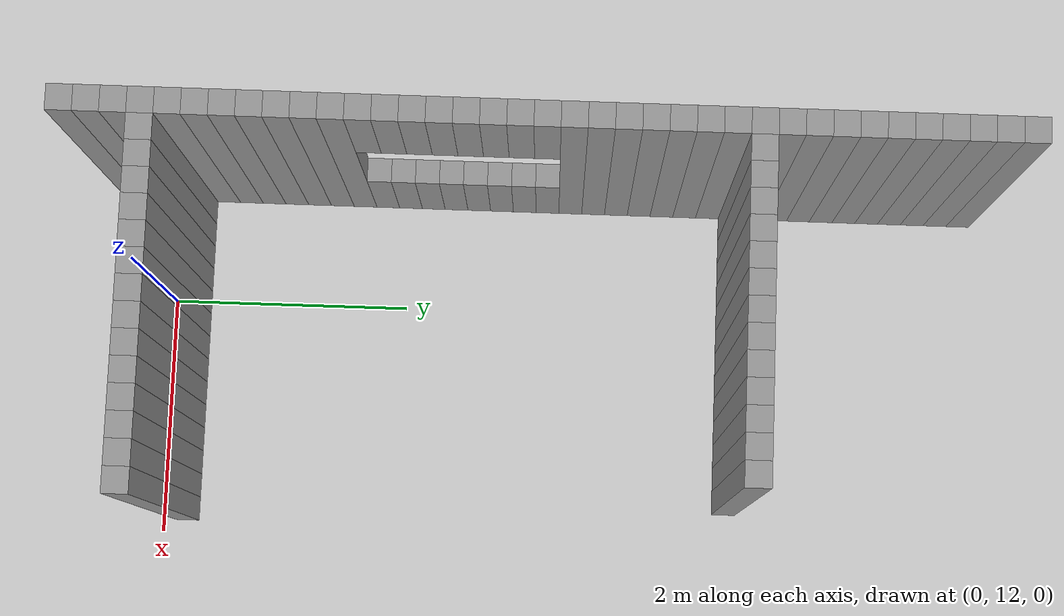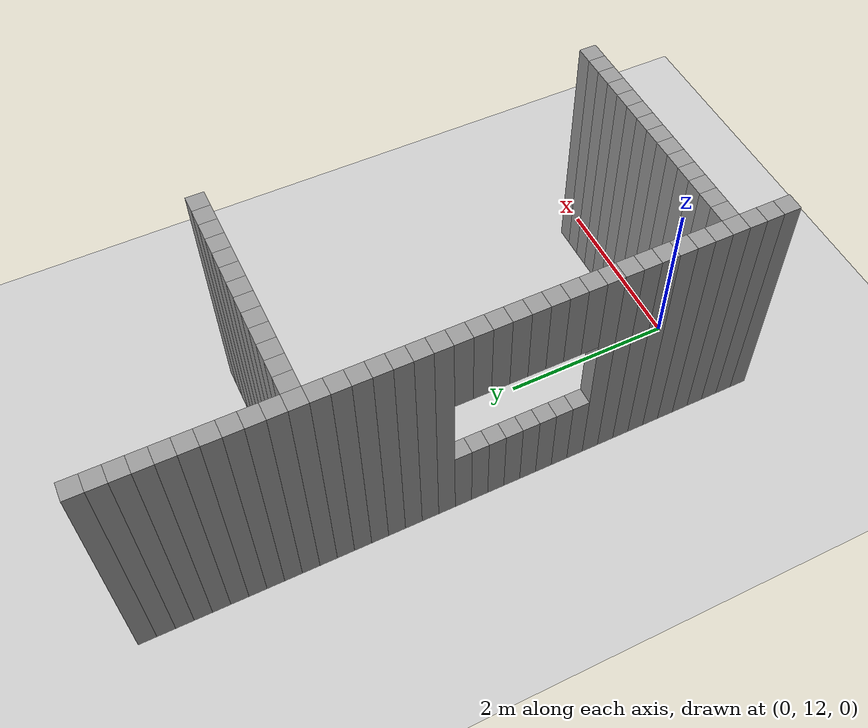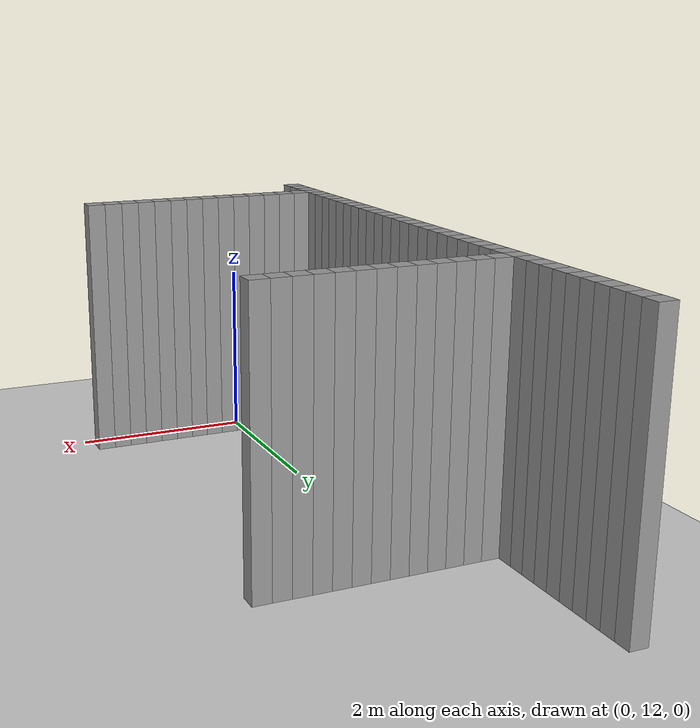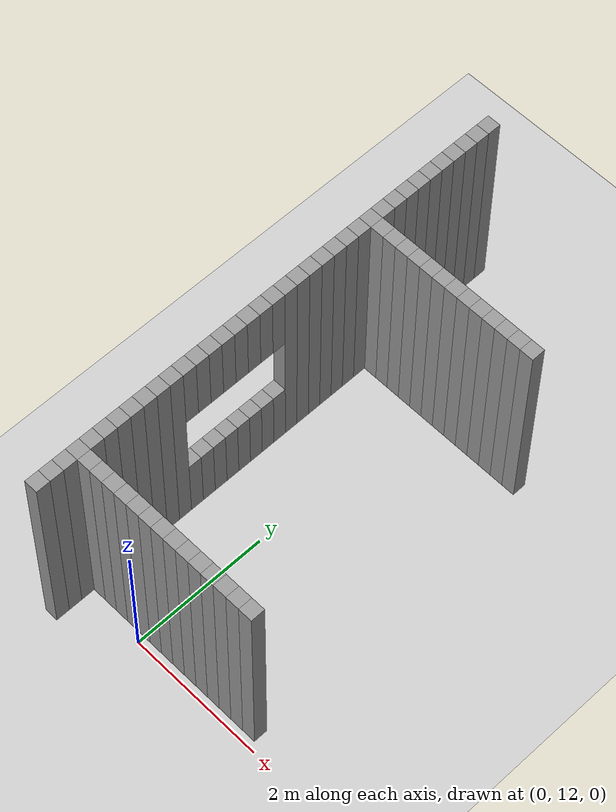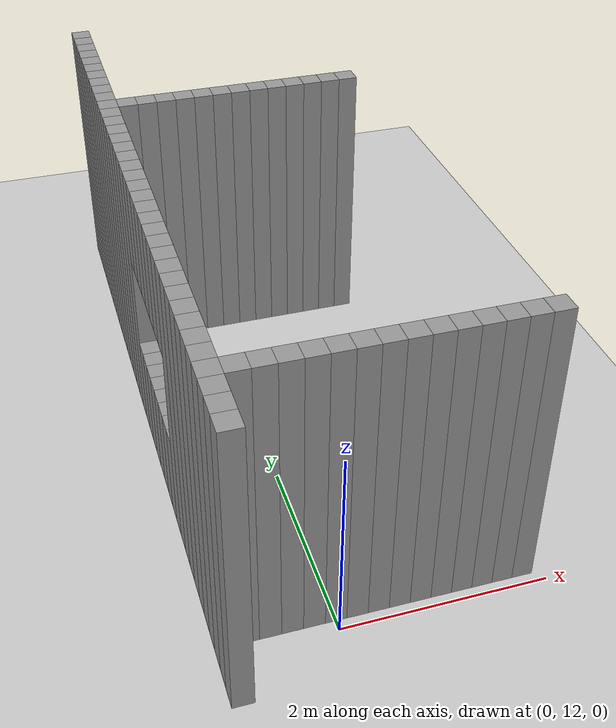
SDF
<sdf version="1.7">
 <world name="default">
  <model name="ground_plane">
   <static>1</static>
   <link name="link">
    <collision name="collision">
     <geometry><plane><normal>0 0 1</normal><size>100 100</size></plane></geometry>
     <surface>
      <contact><collide_bitmask>65535</collide_bitmask></contact>
      <friction><ode><mu>100</mu><mu2>50</mu2></ode></friction>
     </surface>
    </collision>
    <visual name="visual">
     <cast_shadows>0</cast_shadows>
     <geometry><plane><normal>0 0 1</normal><size>100 100</size></plane></geometry>
     <material>
      <script><uri>file://media/materials/scripts/gazebo.material</uri><name>Gazebo/Grey</name></script>
     </material>
    </visual>
   </link>
  </model>
  <model name="05222">
   <pose>-1 -1 0 0 -0 0</pose>
   <link name="Wall_580">
    <collision name="Wall_580_Collision">
     <geometry><box><size>0.2 0.2 3</size></box></geometry>
     <pose>0 0 1.5 0 -0 0</pose>
    </collision>
    <visual name="Wall_580_Visual">
     <pose>0 0 1.5 0 -0 0</pose>
     <geometry><box><size>0.2 0.2 3</size></box></geometry>
     <material>
      <script><uri>file://media/materials/scripts/gazebo.material</uri><name>Gazebo/Grey</name></script>
      <ambient>1 1 1 1</ambient>
     </material>
     <meta><layer>0</layer></meta>
    </visual>
    <pose>0.0 12.600000000000001 0 0 -0 0</pose>
   </link>
   <link name="Wall_585">
    <collision name="Wall_585_Collision">
     <geometry><box><size>0.2 0.2 3</size></box></geometry>
     <pose>0 0 1.5 0 -0 0</pose>
    </collision>
    <visual name="Wall_585_Visual">
     <pose>0 0 1.5 0 -0 0</pose>
     <geometry><box><size>0.2 0.2 3</size></box></geometry>
     <material>
      <script><uri>file://media/materials/scripts/gazebo.material</uri><name>Gazebo/Grey</name></script>
      <ambient>1 1 1 1</ambient>
     </material>
     <meta><layer>0</layer></meta>
    </visual>
    <pose>0.0 12.8 0 0 -0 0</pose>
   </link>
   <link name="Wall_591">
    <collision name="Wall_591_Collision">
     <geometry><box><size>0.2 0.2 3</size></box></geometry>
     <pose>0 0 1.5 0 -0 0</pose>
    </collision>
    <visual name="Wall_591_Visual">
     <pose>0 0 1.5 0 -0 0</pose>
     <geometry><box><size>0.2 0.2 3</size></box></geometry>
     <material>
      <script><uri>file://media/materials/scripts/gazebo.material</uri><name>Gazebo/Grey</name></script>
      <ambient>1 1 1 1</ambient>
     </material>
     <meta><layer>0</layer></meta>
    </visual>
    <pose>0.0 13.0 0 0 -0 0</pose>
   </link>
   <link name="Wall_634">
    <collision name="Wall_634_Collision">
     <geometry><box><size>0.2 0.2 3</size></box></geometry>
     <pose>0 0 1.5 0 -0 0</pose>
    </collision>
    <visual name="Wall_634_Visual">
     <pose>0 0 1.5 0 -0 0</pose>
     <geometry><box><size>0.2 0.2 3</size></box></geometry>
     <material>
      <script><uri>file://media/materials/scripts/gazebo.material</uri><name>Gazebo/Grey</name></script>
      <ambient>1 1 1 1</ambient>
     </material>
     <meta><layer>0</layer></meta>
    </visual>
    <pose>0.0 13.200000000000001 0 0 -0 0</pose>
   </link>
   <link name="Wall_635">
    <collision name="Wall_635_Collision">
     <geometry><box><size>0.2 0.2 3</size></box></geometry>
     <pose>0 0 1.5 0 -0 0</pose>
    </collision>
    <visual name="Wall_635_Visual">
     <pose>0 0 1.5 0 -0 0</pose>
     <geometry><box><size>0.2 0.2 3</size></box></geometry>
     <material>
      <script><uri>file://media/materials/scripts/gazebo.material</uri><name>Gazebo/Grey</name></script>
      <ambient>1 1 1 1</ambient>
     </material>
     <meta><layer>0</layer></meta>
    </visual>
    <pose>0.2 13.200000000000001 0 0 -0 0</pose>
   </link>
   <link name="Wall_636">
    <collision name="Wall_636_Collision">
     <geometry><box><size>0.2 0.2 3</size></box></geometry>
     <pose>0 0 1.5 0 -0 0</pose>
    </collision>
    <visual name="Wall_636_Visual">
     <pose>0 0 1.5 0 -0 0</pose>
     <geometry><box><size>0.2 0.2 3</size></box></geometry>
     <material>
      <script><uri>file://media/materials/scripts/gazebo.material</uri><name>Gazebo/Grey</name></script>
      <ambient>1 1 1 1</ambient>
     </material>
     <meta><layer>0</layer></meta>
    </visual>
    <pose>0.4 13.200000000000001 0 0 -0 0</pose>
   </link>
   <link name="Wall_637">
    <collision name="Wall_637_Collision">
     <geometry><box><size>0.2 0.2 3</size></box></geometry>
     <pose>0 0 1.5 0 -0 0</pose>
    </collision>
    <visual name="Wall_637_Visual">
     <pose>0 0 1.5 0 -0 0</pose>
     <geometry><box><size>0.2 0.2 3</size></box></geometry>
     <material>
      <script><uri>file://media/materials/scripts/gazebo.material</uri><name>Gazebo/Grey</name></script>
      <ambient>1 1 1 1</ambient>
     </material>
     <meta><layer>0</layer></meta>
    </visual>
    <pose>0.6000000000000001 13.200000000000001 0 0 -0 0</pose>
   </link>
   <link name="Wall_638">
    <collision name="Wall_638_Collision">
     <geometry><box><size>0.2 0.2 3</size></box></geometry>
     <pose>0 0 1.5 0 -0 0</pose>
    </collision>
    <visual name="Wall_638_Visual">
     <pose>0 0 1.5 0 -0 0</pose>
     <geometry><box><size>0.2 0.2 3</size></box></geometry>
     <material>
      <script><uri>file://media/materials/scripts/gazebo.material</uri><name>Gazebo/Grey</name></script>
      <ambient>1 1 1 1</ambient>
     </material>
     <meta><layer>0</layer></meta>
    </visual>
    <pose>0.8 13.200000000000001 0 0 -0 0</pose>
   </link>
   <link name="Wall_639">
    <collision name="Wall_639_Collision">
     <geometry><box><size>0.2 0.2 3</size></box></geometry>
     <pose>0 0 1.5 0 -0 0</pose>
    </collision>
    <visual name="Wall_639_Visual">
     <pose>0 0 1.5 0 -0 0</pose>
     <geometry><box><size>0.2 0.2 3</size></box></geometry>
     <material>
      <script><uri>file://media/materials/scripts/gazebo.material</uri><name>Gazebo/Grey</name></script>
      <ambient>1 1 1 1</ambient>
     </material>
     <meta><layer>0</layer></meta>
    </visual>
    <pose>1.0 13.200000000000001 0 0 -0 0</pose>
   </link>
   <link name="Wall_640">
    <collision name="Wall_640_Collision">
     <geometry><box><size>0.2 0.2 3</size></box></geometry>
     <pose>0 0 1.5 0 -0 0</pose>
    </collision>
    <visual name="Wall_640_Visual">
     <pose>0 0 1.5 0 -0 0</pose>
     <geometry><box><size>0.2 0.2 3</size></box></geometry>
     <material>
      <script><uri>file://media/materials/scripts/gazebo.material</uri><name>Gazebo/Grey</name></script>
      <ambient>1 1 1 1</ambient>
     </material>
     <meta><layer>0</layer></meta>
    </visual>
    <pose>1.2000000000000002 13.200000000000001 0 0 -0 0</pose>
   </link>
   <link name="Wall_641">
    <collision name="Wall_641_Collision">
     <geometry><box><size>0.2 0.2 3</size></box></geometry>
     <pose>0 0 1.5 0 -0 0</pose>
    </collision>
    <visual name="Wall_641_Visual">
     <pose>0 0 1.5 0 -0 0</pose>
     <geometry><box><size>0.2 0.2 3</size></box></geometry>
     <material>
      <script><uri>file://media/materials/scripts/gazebo.material</uri><name>Gazebo/Grey</name></script>
      <ambient>1 1 1 1</ambient>
     </material>
     <meta><layer>0</layer></meta>
    </visual>
    <pose>1.4000000000000001 13.200000000000001 0 0 -0 0</pose>
   </link>
   <link name="Wall_642">
    <collision name="Wall_642_Collision">
     <geometry><box><size>0.2 0.2 3</size></box></geometry>
     <pose>0 0 1.5 0 -0 0</pose>
    </collision>
    <visual name="Wall_642_Visual">
     <pose>0 0 1.5 0 -0 0</pose>
     <geometry><box><size>0.2 0.2 3</size></box></geometry>
     <material>
      <script><uri>file://media/materials/scripts/gazebo.material</uri><name>Gazebo/Grey</name></script>
      <ambient>1 1 1 1</ambient>
     </material>
     <meta><layer>0</layer></meta>
    </visual>
    <pose>1.6 13.200000000000001 0 0 -0 0</pose>
   </link>
   <link name="Wall_643">
    <collision name="Wall_643_Collision">
     <geometry><box><size>0.2 0.2 3</size></box></geometry>
     <pose>0 0 1.5 0 -0 0</pose>
    </collision>
    <visual name="Wall_643_Visual">
     <pose>0 0 1.5 0 -0 0</pose>
     <geometry><box><size>0.2 0.2 3</size></box></geometry>
     <material>
      <script><uri>file://media/materials/scripts/gazebo.material</uri><name>Gazebo/Grey</name></script>
      <ambient>1 1 1 1</ambient>
     </material>
     <meta><layer>0</layer></meta>
    </visual>
    <pose>1.8 13.200000000000001 0 0 -0 0</pose>
   </link>
   <link name="Wall_644">
    <collision name="Wall_644_Collision">
     <geometry><box><size>0.2 0.2 3</size></box></geometry>
     <pose>0 0 1.5 0 -0 0</pose>
    </collision>
    <visual name="Wall_644_Visual">
     <pose>0 0 1.5 0 -0 0</pose>
     <geometry><box><size>0.2 0.2 3</size></box></geometry>
     <material>
      <script><uri>file://media/materials/scripts/gazebo.material</uri><name>Gazebo/Grey</name></script>
      <ambient>1 1 1 1</ambient>
     </material>
     <meta><layer>0</layer></meta>
    </visual>
    <pose>2.0 13.200000000000001 0 0 -0 0</pose>
   </link>
   <link name="Wall_645">
    <collision name="Wall_645_Collision">
     <geometry><box><size>0.2 0.2 3</size></box></geometry>
     <pose>0 0 1.5 0 -0 0</pose>
    </collision>
    <visual name="Wall_645_Visual">
     <pose>0 0 1.5 0 -0 0</pose>
     <geometry><box><size>0.2 0.2 3</size></box></geometry>
     <material>
      <script><uri>file://media/materials/scripts/gazebo.material</uri><name>Gazebo/Grey</name></script>
      <ambient>1 1 1 1</ambient>
     </material>
     <meta><layer>0</layer></meta>
    </visual>
    <pose>2.2 13.200000000000001 0 0 -0 0</pose>
   </link>
   <link name="Wall_646">
    <collision name="Wall_646_Collision">
     <geometry><box><size>0.2 0.2 3</size></box></geometry>
     <pose>0 0 1.5 0 -0 0</pose>
    </collision>
    <visual name="Wall_646_Visual">
     <pose>0 0 1.5 0 -0 0</pose>
     <geometry><box><size>0.2 0.2 3</size></box></geometry>
     <material>
      <script><uri>file://media/materials/scripts/gazebo.material</uri><name>Gazebo/Grey</name></script>
      <ambient>1 1 1 1</ambient>
     </material>
     <meta><layer>0</layer></meta>
    </visual>
    <pose>2.4000000000000004 13.200000000000001 0 0 -0 0</pose>
   </link>
   <link name="Wall_647">
    <collision name="Wall_647_Collision">
     <geometry><box><size>0.2 0.2 3</size></box></geometry>
     <pose>0 0 1.5 0 -0 0</pose>
    </collision>
    <visual name="Wall_647_Visual">
     <pose>0 0 1.5 0 -0 0</pose>
     <geometry><box><size>0.2 0.2 3</size></box></geometry>
     <material>
      <script><uri>file://media/materials/scripts/gazebo.material</uri><name>Gazebo/Grey</name></script>
      <ambient>1 1 1 1</ambient>
     </material>
     <meta><layer>0</layer></meta>
    </visual>
    <pose>2.6 13.200000000000001 0 0 -0 0</pose>
   </link>
   <link name="Wall_648">
    <collision name="Wall_648_Collision">
     <geometry><box><size>0.2 0.2 3</size></box></geometry>
     <pose>0 0 1.5 0 -0 0</pose>
    </collision>
    <visual name="Wall_648_Visual">
     <pose>0 0 1.5 0 -0 0</pose>
     <geometry><box><size>0.2 0.2 3</size></box></geometry>
     <material>
      <script><uri>file://media/materials/scripts/gazebo.material</uri><name>Gazebo/Grey</name></script>
      <ambient>1 1 1 1</ambient>
     </material>
     <meta><layer>0</layer></meta>
    </visual>
    <pose>2.8000000000000003 13.200000000000001 0 0 -0 0</pose>
   </link>
   <link name="Wall_659">
    <collision name="Wall_659_Collision">
     <geometry><box><size>0.2 0.2 3</size></box></geometry>
     <pose>0 0 1.5 0 -0 0</pose>
    </collision>
    <visual name="Wall_659_Visual">
     <pose>0 0 1.5 0 -0 0</pose>
     <geometry><box><size>0.2 0.2 3</size></box></geometry>
     <material>
      <script><uri>file://media/materials/scripts/gazebo.material</uri><name>Gazebo/Grey</name></script>
      <ambient>1 1 1 1</ambient>
     </material>
     <meta><layer>0</layer></meta>
    </visual>
    <pose>0.0 13.4 0 0 -0 0</pose>
   </link>
   <link name="Wall_667">
    <collision name="Wall_667_Collision">
     <geometry><box><size>0.2 0.2 3</size></box></geometry>
     <pose>0 0 1.5 0 -0 0</pose>
    </collision>
    <visual name="Wall_667_Visual">
     <pose>0 0 1.5 0 -0 0</pose>
     <geometry><box><size>0.2 0.2 3</size></box></geometry>
     <material>
      <script><uri>file://media/materials/scripts/gazebo.material</uri><name>Gazebo/Grey</name></script>
      <ambient>1 1 1 1</ambient>
     </material>
     <meta><layer>0</layer></meta>
    </visual>
    <pose>0.0 13.600000000000001 0 0 -0 0</pose>
   </link>
   <link name="Wall_675">
    <collision name="Wall_675_Collision">
     <geometry><box><size>0.2 0.2 3</size></box></geometry>
     <pose>0 0 1.5 0 -0 0</pose>
    </collision>
    <visual name="Wall_675_Visual">
     <pose>0 0 1.5 0 -0 0</pose>
     <geometry><box><size>0.2 0.2 3</size></box></geometry>
     <material>
      <script><uri>file://media/materials/scripts/gazebo.material</uri><name>Gazebo/Grey</name></script>
      <ambient>1 1 1 1</ambient>
     </material>
     <meta><layer>0</layer></meta>
    </visual>
    <pose>0.0 13.8 0 0 -0 0</pose>
   </link>
   <link name="Wall_682">
    <collision name="Wall_682_Collision">
     <geometry><box><size>0.2 0.2 3</size></box></geometry>
     <pose>0 0 1.5 0 -0 0</pose>
    </collision>
    <visual name="Wall_682_Visual">
     <pose>0 0 1.5 0 -0 0</pose>
     <geometry><box><size>0.2 0.2 3</size></box></geometry>
     <material>
      <script><uri>file://media/materials/scripts/gazebo.material</uri><name>Gazebo/Grey</name></script>
      <ambient>1 1 1 1</ambient>
     </material>
     <meta><layer>0</layer></meta>
    </visual>
    <pose>0.0 14.0 0 0 -0 0</pose>
   </link>
   <link name="Wall_689">
    <collision name="Wall_689_Collision">
     <geometry><box><size>0.2 0.2 3</size></box></geometry>
     <pose>0 0 1.5 0 -0 0</pose>
    </collision>
    <visual name="Wall_689_Visual">
     <pose>0 0 1.5 0 -0 0</pose>
     <geometry><box><size>0.2 0.2 3</size></box></geometry>
     <material>
      <script><uri>file://media/materials/scripts/gazebo.material</uri><name>Gazebo/Grey</name></script>
      <ambient>1 1 1 1</ambient>
     </material>
     <meta><layer>0</layer></meta>
    </visual>
    <pose>0.0 14.200000000000001 0 0 -0 0</pose>
   </link>
   <link name="Wall_695">
    <collision name="Wall_695_Collision">
     <geometry><box><size>0.2 0.2 3</size></box></geometry>
     <pose>0 0 1.5 0 -0 0</pose>
    </collision>
    <visual name="Wall_695_Visual">
     <pose>0 0 1.5 0 -0 0</pose>
     <geometry><box><size>0.2 0.2 3</size></box></geometry>
     <material>
      <script><uri>file://media/materials/scripts/gazebo.material</uri><name>Gazebo/Grey</name></script>
      <ambient>1 1 1 1</ambient>
     </material>
     <meta><layer>0</layer></meta>
    </visual>
    <pose>0.0 14.4 0 0 -0 0</pose>
   </link>
   <link name="Wall_701">
    <collision name="Wall_701_Collision">
     <geometry><box><size>0.2 0.2 3</size></box></geometry>
     <pose>0 0 1.5 0 -0 0</pose>
    </collision>
    <visual name="Wall_701_Visual">
     <pose>0 0 1.5 0 -0 0</pose>
     <geometry><box><size>0.2 0.2 3</size></box></geometry>
     <material>
      <script><uri>file://media/materials/scripts/gazebo.material</uri><name>Gazebo/Grey</name></script>
      <ambient>1 1 1 1</ambient>
     </material>
     <meta><layer>0</layer></meta>
    </visual>
    <pose>0.0 14.600000000000001 0 0 -0 0</pose>
   </link>
   <link name="Wall_707">
    <collision name="Wall_707_Collision">
     <geometry><box><size>0.2 0.2 1.0</size></box></geometry>
     <pose>0 0 0.5 0 -0 0</pose>
    </collision>
    <visual name="Wall_707_Visual">
     <pose>0 0 0.5 0 -0 0</pose>
     <geometry><box><size>0.2 0.2 1.0</size></box></geometry>
     <material>
      <script><uri>file://media/materials/scripts/gazebo.material</uri><name>Gazebo/Grey</name></script>
      <ambient>1 1 1 1</ambient>
     </material>
     <meta><layer>0</layer></meta>
    </visual>
    <pose>0.0 14.8 0 0 -0 0</pose>
   </link>
   <link name="Wall_708">
    <collision name="Wall_708_Collision">
     <geometry><box><size>0.2 0.2 1.0</size></box></geometry>
     <pose>0 0 2.5 0 -0 0</pose>
    </collision>
    <visual name="Wall_708_Visual">
     <pose>0 0 2.5 0 -0 0</pose>
     <geometry><box><size>0.2 0.2 1.0</size></box></geometry>
     <material>
      <script><uri>file://media/materials/scripts/gazebo.material</uri><name>Gazebo/Grey</name></script>
      <ambient>1 1 1 1</ambient>
     </material>
     <meta><layer>0</layer></meta>
    </visual>
    <pose>0.0 14.8 0 0 -0 0</pose>
   </link>
   <link name="Window_707">
    <collision name="Window_707_Collision">
     <geometry><box><size>0.2 0.2 1.0</size></box></geometry>
     <pose>0 0 1.5 0 -0 0</pose>
    </collision>
    <visual name="Wall_708_Visual">
     <pose>0 0 2.5 0 -0 0</pose>
     <geometry><box><size>0.2 0.2 1.0</size></box></geometry>
     <material>
      <script><uri>file://media/materials/scripts/gazebo.material</uri><name>Gazebo/Grey</name></script>
      <ambient>1 1 1 1</ambient>
     </material>
     <meta><layer>0</layer></meta>
    </visual>
    <pose>0.0 14.8 0 0 -0 0</pose>
   </link>
   <link name="Wall_713">
    <collision name="Wall_713_Collision">
     <geometry><box><size>0.2 0.2 1.0</size></box></geometry>
     <pose>0 0 0.5 0 -0 0</pose>
    </collision>
    <visual name="Wall_713_Visual">
     <pose>0 0 0.5 0 -0 0</pose>
     <geometry><box><size>0.2 0.2 1.0</size></box></geometry>
     <material>
      <script><uri>file://media/materials/scripts/gazebo.material</uri><name>Gazebo/Grey</name></script>
      <ambient>1 1 1 1</ambient>
     </material>
     <meta><layer>0</layer></meta>
    </visual>
    <pose>0.0 15.0 0 0 -0 0</pose>
   </link>
   <link name="Wall_714">
    <collision name="Wall_714_Collision">
     <geometry><box><size>0.2 0.2 1.0</size></box></geometry>
     <pose>0 0 2.5 0 -0 0</pose>
    </collision>
    <visual name="Wall_714_Visual">
     <pose>0 0 2.5 0 -0 0</pose>
     <geometry><box><size>0.2 0.2 1.0</size></box></geometry>
     <material>
      <script><uri>file://media/materials/scripts/gazebo.material</uri><name>Gazebo/Grey</name></script>
      <ambient>1 1 1 1</ambient>
     </material>
     <meta><layer>0</layer></meta>
    </visual>
    <pose>0.0 15.0 0 0 -0 0</pose>
   </link>
   <link name="Window_713">
    <collision name="Window_713_Collision">
     <geometry><box><size>0.2 0.2 1.0</size></box></geometry>
     <pose>0 0 1.5 0 -0 0</pose>
    </collision>
    <visual name="Wall_714_Visual">
     <pose>0 0 2.5 0 -0 0</pose>
     <geometry><box><size>0.2 0.2 1.0</size></box></geometry>
     <material>
      <script><uri>file://media/materials/scripts/gazebo.material</uri><name>Gazebo/Grey</name></script>
      <ambient>1 1 1 1</ambient>
     </material>
     <meta><layer>0</layer></meta>
    </visual>
    <pose>0.0 15.0 0 0 -0 0</pose>
   </link>
   <link name="Wall_719">
    <collision name="Wall_719_Collision">
     <geometry><box><size>0.2 0.2 1.0</size></box></geometry>
     <pose>0 0 0.5 0 -0 0</pose>
    </collision>
    <visual name="Wall_719_Visual">
     <pose>0 0 0.5 0 -0 0</pose>
     <geometry><box><size>0.2 0.2 1.0</size></box></geometry>
     <material>
      <script><uri>file://media/materials/scripts/gazebo.material</uri><name>Gazebo/Grey</name></script>
      <ambient>1 1 1 1</ambient>
     </material>
     <meta><layer>0</layer></meta>
    </visual>
    <pose>0.0 15.200000000000001 0 0 -0 0</pose>
   </link>
   <link name="Wall_720">
    <collision name="Wall_720_Collision">
     <geometry><box><size>0.2 0.2 1.0</size></box></geometry>
     <pose>0 0 2.5 0 -0 0</pose>
    </collision>
    <visual name="Wall_720_Visual">
     <pose>0 0 2.5 0 -0 0</pose>
     <geometry><box><size>0.2 0.2 1.0</size></box></geometry>
     <material>
      <script><uri>file://media/materials/scripts/gazebo.material</uri><name>Gazebo/Grey</name></script>
      <ambient>1 1 1 1</ambient>
     </material>
     <meta><layer>0</layer></meta>
    </visual>
    <pose>0.0 15.200000000000001 0 0 -0 0</pose>
   </link>
   <link name="Window_719">
    <collision name="Window_719_Collision">
     <geometry><box><size>0.2 0.2 1.0</size></box></geometry>
     <pose>0 0 1.5 0 -0 0</pose>
    </collision>
    <visual name="Wall_720_Visual">
     <pose>0 0 2.5 0 -0 0</pose>
     <geometry><box><size>0.2 0.2 1.0</size></box></geometry>
     <material>
      <script><uri>file://media/materials/scripts/gazebo.material</uri><name>Gazebo/Grey</name></script>
      <ambient>1 1 1 1</ambient>
     </material>
     <meta><layer>0</layer></meta>
    </visual>
    <pose>0.0 15.200000000000001 0 0 -0 0</pose>
   </link>
   <link name="Wall_724">
    <collision name="Wall_724_Collision">
     <geometry><box><size>0.2 0.2 1.0</size></box></geometry>
     <pose>0 0 0.5 0 -0 0</pose>
    </collision>
    <visual name="Wall_724_Visual">
     <pose>0 0 0.5 0 -0 0</pose>
     <geometry><box><size>0.2 0.2 1.0</size></box></geometry>
     <material>
      <script><uri>file://media/materials/scripts/gazebo.material</uri><name>Gazebo/Grey</name></script>
      <ambient>1 1 1 1</ambient>
     </material>
     <meta><layer>0</layer></meta>
    </visual>
    <pose>0.0 15.4 0 0 -0 0</pose>
   </link>
   <link name="Wall_725">
    <collision name="Wall_725_Collision">
     <geometry><box><size>0.2 0.2 1.0</size></box></geometry>
     <pose>0 0 2.5 0 -0 0</pose>
    </collision>
    <visual name="Wall_725_Visual">
     <pose>0 0 2.5 0 -0 0</pose>
     <geometry><box><size>0.2 0.2 1.0</size></box></geometry>
     <material>
      <script><uri>file://media/materials/scripts/gazebo.material</uri><name>Gazebo/Grey</name></script>
      <ambient>1 1 1 1</ambient>
     </material>
     <meta><layer>0</layer></meta>
    </visual>
    <pose>0.0 15.4 0 0 -0 0</pose>
   </link>
   <link name="Window_724">
    <collision name="Window_724_Collision">
     <geometry><box><size>0.2 0.2 1.0</size></box></geometry>
     <pose>0 0 1.5 0 -0 0</pose>
    </collision>
    <visual name="Wall_725_Visual">
     <pose>0 0 2.5 0 -0 0</pose>
     <geometry><box><size>0.2 0.2 1.0</size></box></geometry>
     <material>
      <script><uri>file://media/materials/scripts/gazebo.material</uri><name>Gazebo/Grey</name></script>
      <ambient>1 1 1 1</ambient>
     </material>
     <meta><layer>0</layer></meta>
    </visual>
    <pose>0.0 15.4 0 0 -0 0</pose>
   </link>
   <link name="Wall_729">
    <collision name="Wall_729_Collision">
     <geometry><box><size>0.2 0.2 1.0</size></box></geometry>
     <pose>0 0 0.5 0 -0 0</pose>
    </collision>
    <visual name="Wall_729_Visual">
     <pose>0 0 0.5 0 -0 0</pose>
     <geometry><box><size>0.2 0.2 1.0</size></box></geometry>
     <material>
      <script><uri>file://media/materials/scripts/gazebo.material</uri><name>Gazebo/Grey</name></script>
      <ambient>1 1 1 1</ambient>
     </material>
     <meta><layer>0</layer></meta>
    </visual>
    <pose>0.0 15.600000000000001 0 0 -0 0</pose>
   </link>
   <link name="Wall_730">
    <collision name="Wall_730_Collision">
     <geometry><box><size>0.2 0.2 1.0</size></box></geometry>
     <pose>0 0 2.5 0 -0 0</pose>
    </collision>
    <visual name="Wall_730_Visual">
     <pose>0 0 2.5 0 -0 0</pose>
     <geometry><box><size>0.2 0.2 1.0</size></box></geometry>
     <material>
      <script><uri>file://media/materials/scripts/gazebo.material</uri><name>Gazebo/Grey</name></script>
      <ambient>1 1 1 1</ambient>
     </material>
     <meta><layer>0</layer></meta>
    </visual>
    <pose>0.0 15.600000000000001 0 0 -0 0</pose>
   </link>
   <link name="Window_729">
    <collision name="Window_729_Collision">
     <geometry><box><size>0.2 0.2 1.0</size></box></geometry>
     <pose>0 0 1.5 0 -0 0</pose>
    </collision>
    <visual name="Wall_730_Visual">
     <pose>0 0 2.5 0 -0 0</pose>
     <geometry><box><size>0.2 0.2 1.0</size></box></geometry>
     <material>
      <script><uri>file://media/materials/scripts/gazebo.material</uri><name>Gazebo/Grey</name></script>
      <ambient>1 1 1 1</ambient>
     </material>
     <meta><layer>0</layer></meta>
    </visual>
    <pose>0.0 15.600000000000001 0 0 -0 0</pose>
   </link>
   <link name="Wall_734">
    <collision name="Wall_734_Collision">
     <geometry><box><size>0.2 0.2 1.0</size></box></geometry>
     <pose>0 0 0.5 0 -0 0</pose>
    </collision>
    <visual name="Wall_734_Visual">
     <pose>0 0 0.5 0 -0 0</pose>
     <geometry><box><size>0.2 0.2 1.0</size></box></geometry>
     <material>
      <script><uri>file://media/materials/scripts/gazebo.material</uri><name>Gazebo/Grey</name></script>
      <ambient>1 1 1 1</ambient>
     </material>
     <meta><layer>0</layer></meta>
    </visual>
    <pose>0.0 15.8 0 0 -0 0</pose>
   </link>
   <link name="Wall_735">
    <collision name="Wall_735_Collision">
     <geometry><box><size>0.2 0.2 1.0</size></box></geometry>
     <pose>0 0 2.5 0 -0 0</pose>
    </collision>
    <visual name="Wall_735_Visual">
     <pose>0 0 2.5 0 -0 0</pose>
     <geometry><box><size>0.2 0.2 1.0</size></box></geometry>
     <material>
      <script><uri>file://media/materials/scripts/gazebo.material</uri><name>Gazebo/Grey</name></script>
      <ambient>1 1 1 1</ambient>
     </material>
     <meta><layer>0</layer></meta>
    </visual>
    <pose>0.0 15.8 0 0 -0 0</pose>
   </link>
   <link name="Window_734">
    <collision name="Window_734_Collision">
     <geometry><box><size>0.2 0.2 1.0</size></box></geometry>
     <pose>0 0 1.5 0 -0 0</pose>
    </collision>
    <visual name="Wall_735_Visual">
     <pose>0 0 2.5 0 -0 0</pose>
     <geometry><box><size>0.2 0.2 1.0</size></box></geometry>
     <material>
      <script><uri>file://media/materials/scripts/gazebo.material</uri><name>Gazebo/Grey</name></script>
      <ambient>1 1 1 1</ambient>
     </material>
     <meta><layer>0</layer></meta>
    </visual>
    <pose>0.0 15.8 0 0 -0 0</pose>
   </link>
   <link name="Wall_758">
    <collision name="Wall_758_Collision">
     <geometry><box><size>0.2 0.2 1.0</size></box></geometry>
     <pose>0 0 0.5 0 -0 0</pose>
    </collision>
    <visual name="Wall_758_Visual">
     <pose>0 0 0.5 0 -0 0</pose>
     <geometry><box><size>0.2 0.2 1.0</size></box></geometry>
     <material>
      <script><uri>file://media/materials/scripts/gazebo.material</uri><name>Gazebo/Grey</name></script>
      <ambient>1 1 1 1</ambient>
     </material>
     <meta><layer>0</layer></meta>
    </visual>
    <pose>0.0 16.0 0 0 -0 0</pose>
   </link>
   <link name="Wall_759">
    <collision name="Wall_759_Collision">
     <geometry><box><size>0.2 0.2 1.0</size></box></geometry>
     <pose>0 0 2.5 0 -0 0</pose>
    </collision>
    <visual name="Wall_759_Visual">
     <pose>0 0 2.5 0 -0 0</pose>
     <geometry><box><size>0.2 0.2 1.0</size></box></geometry>
     <material>
      <script><uri>file://media/materials/scripts/gazebo.material</uri><name>Gazebo/Grey</name></script>
      <ambient>1 1 1 1</ambient>
     </material>
     <meta><layer>0</layer></meta>
    </visual>
    <pose>0.0 16.0 0 0 -0 0</pose>
   </link>
   <link name="Window_758">
    <collision name="Window_758_Collision">
     <geometry><box><size>0.2 0.2 1.0</size></box></geometry>
     <pose>0 0 1.5 0 -0 0</pose>
    </collision>
    <visual name="Wall_759_Visual">
     <pose>0 0 2.5 0 -0 0</pose>
     <geometry><box><size>0.2 0.2 1.0</size></box></geometry>
     <material>
      <script><uri>file://media/materials/scripts/gazebo.material</uri><name>Gazebo/Grey</name></script>
      <ambient>1 1 1 1</ambient>
     </material>
     <meta><layer>0</layer></meta>
    </visual>
    <pose>0.0 16.0 0 0 -0 0</pose>
   </link>
   <link name="Wall_765">
    <collision name="Wall_765_Collision">
     <geometry><box><size>0.2 0.2 1.0</size></box></geometry>
     <pose>0 0 0.5 0 -0 0</pose>
    </collision>
    <visual name="Wall_765_Visual">
     <pose>0 0 0.5 0 -0 0</pose>
     <geometry><box><size>0.2 0.2 1.0</size></box></geometry>
     <material>
      <script><uri>file://media/materials/scripts/gazebo.material</uri><name>Gazebo/Grey</name></script>
      <ambient>1 1 1 1</ambient>
     </material>
     <meta><layer>0</layer></meta>
    </visual>
    <pose>0.0 16.2 0 0 -0 0</pose>
   </link>
   <link name="Wall_766">
    <collision name="Wall_766_Collision">
     <geometry><box><size>0.2 0.2 1.0</size></box></geometry>
     <pose>0 0 2.5 0 -0 0</pose>
    </collision>
    <visual name="Wall_766_Visual">
     <pose>0 0 2.5 0 -0 0</pose>
     <geometry><box><size>0.2 0.2 1.0</size></box></geometry>
     <material>
      <script><uri>file://media/materials/scripts/gazebo.material</uri><name>Gazebo/Grey</name></script>
      <ambient>1 1 1 1</ambient>
     </material>
     <meta><layer>0</layer></meta>
    </visual>
    <pose>0.0 16.2 0 0 -0 0</pose>
   </link>
   <link name="Window_765">
    <collision name="Window_765_Collision">
     <geometry><box><size>0.2 0.2 1.0</size></box></geometry>
     <pose>0 0 1.5 0 -0 0</pose>
    </collision>
    <visual name="Wall_766_Visual">
     <pose>0 0 2.5 0 -0 0</pose>
     <geometry><box><size>0.2 0.2 1.0</size></box></geometry>
     <material>
      <script><uri>file://media/materials/scripts/gazebo.material</uri><name>Gazebo/Grey</name></script>
      <ambient>1 1 1 1</ambient>
     </material>
     <meta><layer>0</layer></meta>
    </visual>
    <pose>0.0 16.2 0 0 -0 0</pose>
   </link>
   <link name="Wall_772">
    <collision name="Wall_772_Collision">
     <geometry><box><size>0.2 0.2 3</size></box></geometry>
     <pose>0 0 1.5 0 -0 0</pose>
    </collision>
    <visual name="Wall_772_Visual">
     <pose>0 0 1.5 0 -0 0</pose>
     <geometry><box><size>0.2 0.2 3</size></box></geometry>
     <material>
      <script><uri>file://media/materials/scripts/gazebo.material</uri><name>Gazebo/Grey</name></script>
      <ambient>1 1 1 1</ambient>
     </material>
     <meta><layer>0</layer></meta>
    </visual>
    <pose>0.0 16.400000000000002 0 0 -0 0</pose>
   </link>
   <link name="Wall_778">
    <collision name="Wall_778_Collision">
     <geometry><box><size>0.2 0.2 3</size></box></geometry>
     <pose>0 0 1.5 0 -0 0</pose>
    </collision>
    <visual name="Wall_778_Visual">
     <pose>0 0 1.5 0 -0 0</pose>
     <geometry><box><size>0.2 0.2 3</size></box></geometry>
     <material>
      <script><uri>file://media/materials/scripts/gazebo.material</uri><name>Gazebo/Grey</name></script>
      <ambient>1 1 1 1</ambient>
     </material>
     <meta><layer>0</layer></meta>
    </visual>
    <pose>0.0 16.6 0 0 -0 0</pose>
   </link>
   <link name="Wall_785">
    <collision name="Wall_785_Collision">
     <geometry><box><size>0.2 0.2 3</size></box></geometry>
     <pose>0 0 1.5 0 -0 0</pose>
    </collision>
    <visual name="Wall_785_Visual">
     <pose>0 0 1.5 0 -0 0</pose>
     <geometry><box><size>0.2 0.2 3</size></box></geometry>
     <material>
      <script><uri>file://media/materials/scripts/gazebo.material</uri><name>Gazebo/Grey</name></script>
      <ambient>1 1 1 1</ambient>
     </material>
     <meta><layer>0</layer></meta>
    </visual>
    <pose>0.0 16.8 0 0 -0 0</pose>
   </link>
   <link name="Wall_792">
    <collision name="Wall_792_Collision">
     <geometry><box><size>0.2 0.2 3</size></box></geometry>
     <pose>0 0 1.5 0 -0 0</pose>
    </collision>
    <visual name="Wall_792_Visual">
     <pose>0 0 1.5 0 -0 0</pose>
     <geometry><box><size>0.2 0.2 3</size></box></geometry>
     <material>
      <script><uri>file://media/materials/scripts/gazebo.material</uri><name>Gazebo/Grey</name></script>
      <ambient>1 1 1 1</ambient>
     </material>
     <meta><layer>0</layer></meta>
    </visual>
    <pose>0.0 17.0 0 0 -0 0</pose>
   </link>
   <link name="Wall_800">
    <collision name="Wall_800_Collision">
     <geometry><box><size>0.2 0.2 3</size></box></geometry>
     <pose>0 0 1.5 0 -0 0</pose>
    </collision>
    <visual name="Wall_800_Visual">
     <pose>0 0 1.5 0 -0 0</pose>
     <geometry><box><size>0.2 0.2 3</size></box></geometry>
     <material>
      <script><uri>file://media/materials/scripts/gazebo.material</uri><name>Gazebo/Grey</name></script>
      <ambient>1 1 1 1</ambient>
     </material>
     <meta><layer>0</layer></meta>
    </visual>
    <pose>0.0 17.2 0 0 -0 0</pose>
   </link>
   <link name="Wall_807">
    <collision name="Wall_807_Collision">
     <geometry><box><size>0.2 0.2 3</size></box></geometry>
     <pose>0 0 1.5 0 -0 0</pose>
    </collision>
    <visual name="Wall_807_Visual">
     <pose>0 0 1.5 0 -0 0</pose>
     <geometry><box><size>0.2 0.2 3</size></box></geometry>
     <material>
      <script><uri>file://media/materials/scripts/gazebo.material</uri><name>Gazebo/Grey</name></script>
      <ambient>1 1 1 1</ambient>
     </material>
     <meta><layer>0</layer></meta>
    </visual>
    <pose>0.0 17.400000000000002 0 0 -0 0</pose>
   </link>
   <link name="Wall_814">
    <collision name="Wall_814_Collision">
     <geometry><box><size>0.2 0.2 3</size></box></geometry>
     <pose>0 0 1.5 0 -0 0</pose>
    </collision>
    <visual name="Wall_814_Visual">
     <pose>0 0 1.5 0 -0 0</pose>
     <geometry><box><size>0.2 0.2 3</size></box></geometry>
     <material>
      <script><uri>file://media/materials/scripts/gazebo.material</uri><name>Gazebo/Grey</name></script>
      <ambient>1 1 1 1</ambient>
     </material>
     <meta><layer>0</layer></meta>
    </visual>
    <pose>0.0 17.6 0 0 -0 0</pose>
   </link>
   <link name="Wall_848">
    <collision name="Wall_848_Collision">
     <geometry><box><size>0.2 0.2 3</size></box></geometry>
     <pose>0 0 1.5 0 -0 0</pose>
    </collision>
    <visual name="Wall_848_Visual">
     <pose>0 0 1.5 0 -0 0</pose>
     <geometry><box><size>0.2 0.2 3</size></box></geometry>
     <material>
      <script><uri>file://media/materials/scripts/gazebo.material</uri><name>Gazebo/Grey</name></script>
      <ambient>1 1 1 1</ambient>
     </material>
     <meta><layer>0</layer></meta>
    </visual>
    <pose>0.0 17.8 0 0 -0 0</pose>
   </link>
   <link name="Wall_849">
    <collision name="Wall_849_Collision">
     <geometry><box><size>0.2 0.2 3</size></box></geometry>
     <pose>0 0 1.5 0 -0 0</pose>
    </collision>
    <visual name="Wall_849_Visual">
     <pose>0 0 1.5 0 -0 0</pose>
     <geometry><box><size>0.2 0.2 3</size></box></geometry>
     <material>
      <script><uri>file://media/materials/scripts/gazebo.material</uri><name>Gazebo/Grey</name></script>
      <ambient>1 1 1 1</ambient>
     </material>
     <meta><layer>0</layer></meta>
    </visual>
    <pose>0.2 17.8 0 0 -0 0</pose>
   </link>
   <link name="Wall_850">
    <collision name="Wall_850_Collision">
     <geometry><box><size>0.2 0.2 3</size></box></geometry>
     <pose>0 0 1.5 0 -0 0</pose>
    </collision>
    <visual name="Wall_850_Visual">
     <pose>0 0 1.5 0 -0 0</pose>
     <geometry><box><size>0.2 0.2 3</size></box></geometry>
     <material>
      <script><uri>file://media/materials/scripts/gazebo.material</uri><name>Gazebo/Grey</name></script>
      <ambient>1 1 1 1</ambient>
     </material>
     <meta><layer>0</layer></meta>
    </visual>
    <pose>0.4 17.8 0 0 -0 0</pose>
   </link>
   <link name="Wall_851">
    <collision name="Wall_851_Collision">
     <geometry><box><size>0.2 0.2 3</size></box></geometry>
     <pose>0 0 1.5 0 -0 0</pose>
    </collision>
    <visual name="Wall_851_Visual">
     <pose>0 0 1.5 0 -0 0</pose>
     <geometry><box><size>0.2 0.2 3</size></box></geometry>
     <material>
      <script><uri>file://media/materials/scripts/gazebo.material</uri><name>Gazebo/Grey</name></script>
      <ambient>1 1 1 1</ambient>
     </material>
     <meta><layer>0</layer></meta>
    </visual>
    <pose>0.6000000000000001 17.8 0 0 -0 0</pose>
   </link>
   <link name="Wall_852">
    <collision name="Wall_852_Collision">
     <geometry><box><size>0.2 0.2 3</size></box></geometry>
     <pose>0 0 1.5 0 -0 0</pose>
    </collision>
    <visual name="Wall_852_Visual">
     <pose>0 0 1.5 0 -0 0</pose>
     <geometry><box><size>0.2 0.2 3</size></box></geometry>
     <material>
      <script><uri>file://media/materials/scripts/gazebo.material</uri><name>Gazebo/Grey</name></script>
      <ambient>1 1 1 1</ambient>
     </material>
     <meta><layer>0</layer></meta>
    </visual>
    <pose>0.8 17.8 0 0 -0 0</pose>
   </link>
   <link name="Wall_853">
    <collision name="Wall_853_Collision">
     <geometry><box><size>0.2 0.2 3</size></box></geometry>
     <pose>0 0 1.5 0 -0 0</pose>
    </collision>
    <visual name="Wall_853_Visual">
     <pose>0 0 1.5 0 -0 0</pose>
     <geometry><box><size>0.2 0.2 3</size></box></geometry>
     <material>
      <script><uri>file://media/materials/scripts/gazebo.material</uri><name>Gazebo/Grey</name></script>
      <ambient>1 1 1 1</ambient>
     </material>
     <meta><layer>0</layer></meta>
    </visual>
    <pose>1.0 17.8 0 0 -0 0</pose>
   </link>
   <link name="Wall_854">
    <collision name="Wall_854_Collision">
     <geometry><box><size>0.2 0.2 3</size></box></geometry>
     <pose>0 0 1.5 0 -0 0</pose>
    </collision>
    <visual name="Wall_854_Visual">
     <pose>0 0 1.5 0 -0 0</pose>
     <geometry><box><size>0.2 0.2 3</size></box></geometry>
     <material>
      <script><uri>file://media/materials/scripts/gazebo.material</uri><name>Gazebo/Grey</name></script>
      <ambient>1 1 1 1</ambient>
     </material>
     <meta><layer>0</layer></meta>
    </visual>
    <pose>1.2000000000000002 17.8 0 0 -0 0</pose>
   </link>
   <link name="Wall_855">
    <collision name="Wall_855_Collision">
     <geometry><box><size>0.2 0.2 3</size></box></geometry>
     <pose>0 0 1.5 0 -0 0</pose>
    </collision>
    <visual name="Wall_855_Visual">
     <pose>0 0 1.5 0 -0 0</pose>
     <geometry><box><size>0.2 0.2 3</size></box></geometry>
     <material>
      <script><uri>file://media/materials/scripts/gazebo.material</uri><name>Gazebo/Grey</name></script>
      <ambient>1 1 1 1</ambient>
     </material>
     <meta><layer>0</layer></meta>
    </visual>
    <pose>1.4000000000000001 17.8 0 0 -0 0</pose>
   </link>
   <link name="Wall_856">
    <collision name="Wall_856_Collision">
     <geometry><box><size>0.2 0.2 3</size></box></geometry>
     <pose>0 0 1.5 0 -0 0</pose>
    </collision>
    <visual name="Wall_856_Visual">
     <pose>0 0 1.5 0 -0 0</pose>
     <geometry><box><size>0.2 0.2 3</size></box></geometry>
     <material>
      <script><uri>file://media/materials/scripts/gazebo.material</uri><name>Gazebo/Grey</name></script>
      <ambient>1 1 1 1</ambient>
     </material>
     <meta><layer>0</layer></meta>
    </visual>
    <pose>1.6 17.8 0 0 -0 0</pose>
   </link>
   <link name="Wall_857">
    <collision name="Wall_857_Collision">
     <geometry><box><size>0.2 0.2 3</size></box></geometry>
     <pose>0 0 1.5 0 -0 0</pose>
    </collision>
    <visual name="Wall_857_Visual">
     <pose>0 0 1.5 0 -0 0</pose>
     <geometry><box><size>0.2 0.2 3</size></box></geometry>
     <material>
      <script><uri>file://media/materials/scripts/gazebo.material</uri><name>Gazebo/Grey</name></script>
      <ambient>1 1 1 1</ambient>
     </material>
     <meta><layer>0</layer></meta>
    </visual>
    <pose>1.8 17.8 0 0 -0 0</pose>
   </link>
   <link name="Wall_858">
    <collision name="Wall_858_Collision">
     <geometry><box><size>0.2 0.2 3</size></box></geometry>
     <pose>0 0 1.5 0 -0 0</pose>
    </collision>
    <visual name="Wall_858_Visual">
     <pose>0 0 1.5 0 -0 0</pose>
     <geometry><box><size>0.2 0.2 3</size></box></geometry>
     <material>
      <script><uri>file://media/materials/scripts/gazebo.material</uri><name>Gazebo/Grey</name></script>
      <ambient>1 1 1 1</ambient>
     </material>
     <meta><layer>0</layer></meta>
    </visual>
    <pose>2.0 17.8 0 0 -0 0</pose>
   </link>
   <link name="Wall_859">
    <collision name="Wall_859_Collision">
     <geometry><box><size>0.2 0.2 3</size></box></geometry>
     <pose>0 0 1.5 0 -0 0</pose>
    </collision>
    <visual name="Wall_859_Visual">
     <pose>0 0 1.5 0 -0 0</pose>
     <geometry><box><size>0.2 0.2 3</size></box></geometry>
     <material>
      <script><uri>file://media/materials/scripts/gazebo.material</uri><name>Gazebo/Grey</name></script>
      <ambient>1 1 1 1</ambient>
     </material>
     <meta><layer>0</layer></meta>
    </visual>
    <pose>2.2 17.8 0 0 -0 0</pose>
   </link>
   <link name="Wall_860">
    <collision name="Wall_860_Collision">
     <geometry><box><size>0.2 0.2 3</size></box></geometry>
     <pose>0 0 1.5 0 -0 0</pose>
    </collision>
    <visual name="Wall_860_Visual">
     <pose>0 0 1.5 0 -0 0</pose>
     <geometry><box><size>0.2 0.2 3</size></box></geometry>
     <material>
      <script><uri>file://media/materials/scripts/gazebo.material</uri><name>Gazebo/Grey</name></script>
      <ambient>1 1 1 1</ambient>
     </material>
     <meta><layer>0</layer></meta>
    </visual>
    <pose>2.4000000000000004 17.8 0 0 -0 0</pose>
   </link>
   <link name="Wall_861">
    <collision name="Wall_861_Collision">
     <geometry><box><size>0.2 0.2 3</size></box></geometry>
     <pose>0 0 1.5 0 -0 0</pose>
    </collision>
    <visual name="Wall_861_Visual">
     <pose>0 0 1.5 0 -0 0</pose>
     <geometry><box><size>0.2 0.2 3</size></box></geometry>
     <material>
      <script><uri>file://media/materials/scripts/gazebo.material</uri><name>Gazebo/Grey</name></script>
      <ambient>1 1 1 1</ambient>
     </material>
     <meta><layer>0</layer></meta>
    </visual>
    <pose>2.6 17.8 0 0 -0 0</pose>
   </link>
   <link name="Wall_869">
    <collision name="Wall_869_Collision">
     <geometry><box><size>0.2 0.2 3</size></box></geometry>
     <pose>0 0 1.5 0 -0 0</pose>
    </collision>
    <visual name="Wall_869_Visual">
     <pose>0 0 1.5 0 -0 0</pose>
     <geometry><box><size>0.2 0.2 3</size></box></geometry>
     <material>
      <script><uri>file://media/materials/scripts/gazebo.material</uri><name>Gazebo/Grey</name></script>
      <ambient>1 1 1 1</ambient>
     </material>
     <meta><layer>0</layer></meta>
    </visual>
    <pose>0.0 18.0 0 0 -0 0</pose>
   </link>
   <link name="Wall_872">
    <collision name="Wall_872_Collision">
     <geometry><box><size>0.2 0.2 3</size></box></geometry>
     <pose>0 0 1.5 0 -0 0</pose>
    </collision>
    <visual name="Wall_872_Visual">
     <pose>0 0 1.5 0 -0 0</pose>
     <geometry><box><size>0.2 0.2 3</size></box></geometry>
     <material>
      <script><uri>file://media/materials/scripts/gazebo.material</uri><name>Gazebo/Grey</name></script>
      <ambient>1 1 1 1</ambient>
     </material>
     <meta><layer>0</layer></meta>
    </visual>
    <pose>0.0 18.2 0 0 -0 0</pose>
   </link>
   <link name="Wall_875">
    <collision name="Wall_875_Collision">
     <geometry><box><size>0.2 0.2 3</size></box></geometry>
     <pose>0 0 1.5 0 -0 0</pose>
    </collision>
    <visual name="Wall_875_Visual">
     <pose>0 0 1.5 0 -0 0</pose>
     <geometry><box><size>0.2 0.2 3</size></box></geometry>
     <material>
      <script><uri>file://media/materials/scripts/gazebo.material</uri><name>Gazebo/Grey</name></script>
      <ambient>1 1 1 1</ambient>
     </material>
     <meta><layer>0</layer></meta>
    </visual>
    <pose>0.0 18.400000000000002 0 0 -0 0</pose>
   </link>
   <link name="Wall_878">
    <collision name="Wall_878_Collision">
     <geometry><box><size>0.2 0.2 3</size></box></geometry>
     <pose>0 0 1.5 0 -0 0</pose>
    </collision>
    <visual name="Wall_878_Visual">
     <pose>0 0 1.5 0 -0 0</pose>
     <geometry><box><size>0.2 0.2 3</size></box></geometry>
     <material>
      <script><uri>file://media/materials/scripts/gazebo.material</uri><name>Gazebo/Grey</name></script>
      <ambient>1 1 1 1</ambient>
     </material>
     <meta><layer>0</layer></meta>
    </visual>
    <pose>0.0 18.6 0 0 -0 0</pose>
   </link>
   <link name="Wall_881">
    <collision name="Wall_881_Collision">
     <geometry><box><size>0.2 0.2 3</size></box></geometry>
     <pose>0 0 1.5 0 -0 0</pose>
    </collision>
    <visual name="Wall_881_Visual">
     <pose>0 0 1.5 0 -0 0</pose>
     <geometry><box><size>0.2 0.2 3</size></box></geometry>
     <material>
      <script><uri>file://media/materials/scripts/gazebo.material</uri><name>Gazebo/Grey</name></script>
      <ambient>1 1 1 1</ambient>
     </material>
     <meta><layer>0</layer></meta>
    </visual>
    <pose>0.0 18.8 0 0 -0 0</pose>
   </link>
   <link name="Wall_885">
    <collision name="Wall_885_Collision">
     <geometry><box><size>0.2 0.2 3</size></box></geometry>
     <pose>0 0 1.5 0 -0 0</pose>
    </collision>
    <visual name="Wall_885_Visual">
     <pose>0 0 1.5 0 -0 0</pose>
     <geometry><box><size>0.2 0.2 3</size></box></geometry>
     <material>
      <script><uri>file://media/materials/scripts/gazebo.material</uri><name>Gazebo/Grey</name></script>
      <ambient>1 1 1 1</ambient>
     </material>
     <meta><layer>0</layer></meta>
    </visual>
    <pose>0.0 19.0 0 0 -0 0</pose>
   </link>
   <link name="Wall_888">
    <collision name="Wall_888_Collision">
     <geometry><box><size>0.2 0.2 3</size></box></geometry>
     <pose>0 0 1.5 0 -0 0</pose>
    </collision>
    <visual name="Wall_888_Visual">
     <pose>0 0 1.5 0 -0 0</pose>
     <geometry><box><size>0.2 0.2 3</size></box></geometry>
     <material>
      <script><uri>file://media/materials/scripts/gazebo.material</uri><name>Gazebo/Grey</name></script>
      <ambient>1 1 1 1</ambient>
     </material>
     <meta><layer>0</layer></meta>
    </visual>
    <pose>0.0 19.200000000000003 0 0 -0 0</pose>
   </link>
   <link name="Wall_891">
    <collision name="Wall_891_Collision">
     <geometry><box><size>0.2 0.2 3</size></box></geometry>
     <pose>0 0 1.5 0 -0 0</pose>
    </collision>
    <visual name="Wall_891_Visual">
     <pose>0 0 1.5 0 -0 0</pose>
     <geometry><box><size>0.2 0.2 3</size></box></geometry>
     <material>
      <script><uri>file://media/materials/scripts/gazebo.material</uri><name>Gazebo/Grey</name></script>
      <ambient>1 1 1 1</ambient>
     </material>
     <meta><layer>0</layer></meta>
    </visual>
    <pose>0.0 19.400000000000002 0 0 -0 0</pose>
   </link>
   <link name="Wall_894">
    <collision name="Wall_894_Collision">
     <geometry><box><size>0.2 0.2 3</size></box></geometry>
     <pose>0 0 1.5 0 -0 0</pose>
    </collision>
    <visual name="Wall_894_Visual">
     <pose>0 0 1.5 0 -0 0</pose>
     <geometry><box><size>0.2 0.2 3</size></box></geometry>
     <material>
      <script><uri>file://media/materials/scripts/gazebo.material</uri><name>Gazebo/Grey</name></script>
      <ambient>1 1 1 1</ambient>
     </material>
     <meta><layer>0</layer></meta>
    </visual>
    <pose>0.0 19.6 0 0 -0 0</pose>
   </link>
   <link name="Wall_898">
    <collision name="Wall_898_Collision">
     <geometry><box><size>0.2 0.2 3</size></box></geometry>
     <pose>0 0 1.5 0 -0 0</pose>
    </collision>
    <visual name="Wall_898_Visual">
     <pose>0 0 1.5 0 -0 0</pose>
     <geometry><box><size>0.2 0.2 3</size></box></geometry>
     <material>
      <script><uri>file://media/materials/scripts/gazebo.material</uri><name>Gazebo/Grey</name></script>
      <ambient>1 1 1 1</ambient>
     </material>
     <meta><layer>0</layer></meta>
    </visual>
    <pose>0.0 19.8 0 0 -0 0</pose>
   </link>
   <static>1</static>
  </model>
 </world>
</sdf>
